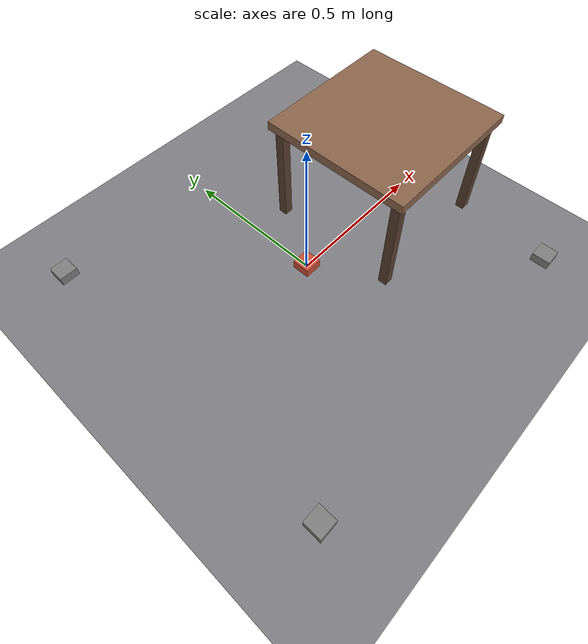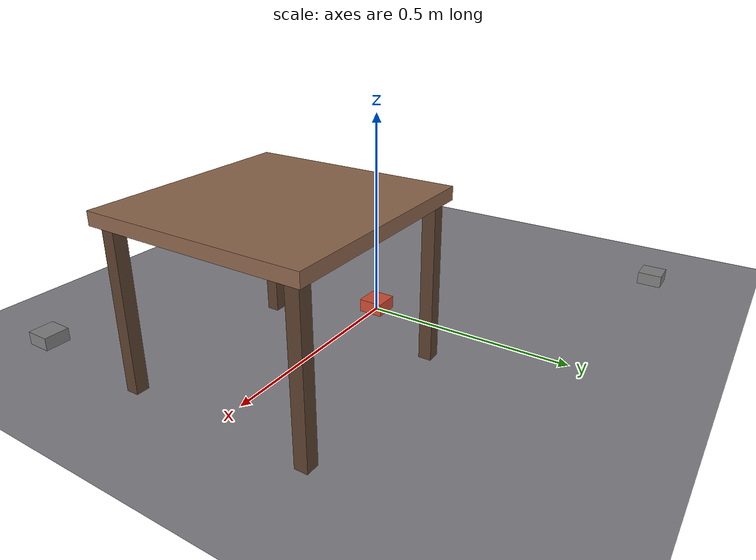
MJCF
<mujoco model="scaffolded_torque_reactive">
  <option timestep="0.002" integrator="implicitfast" />
  <asset>
    <texture name="ground_tex_0" type="2d" builtin="checker" rgb1="0.5 0.5 0.52" rgb2="0.4 0.4 0.42" width="64" height="64"/>
    <material name="ground_mat_0" texture="ground_tex_0" texrepeat="4 4" reflectance="0.1"/>
    <texture name="ground_tex_1" type="2d" builtin="checker" rgb1="0.45 0.42 0.38" rgb2="0.3 0.28 0.25" width="64" height="64"/>
    <material name="ground_mat_1" texture="ground_tex_1" texrepeat="6 6" reflectance="0.05"/>
    <texture name="ground_tex_2" type="2d" builtin="gradient" rgb1="0.55 0.6 0.65" rgb2="0.25 0.28 0.32" width="64" height="64"/>
    <material name="ground_mat_2" texture="ground_tex_2" reflectance="0.0"/>

    <texture name="table_tex_0" type="2d" builtin="checker" rgb1="0.55 0.4 0.3" rgb2="0.45 0.32 0.24" width="64" height="64"/>
    <material name="table_mat_0" texture="table_tex_0" texrepeat="3 3" reflectance="0.1"/>
    <texture name="table_tex_1" type="2d" builtin="checker" rgb1="0.6 0.55 0.5" rgb2="0.4 0.36 0.3" width="64" height="64"/>
    <material name="table_mat_1" texture="table_tex_1" texrepeat="2 2" reflectance="0.15"/>
    <texture name="table_tex_2" type="2d" builtin="gradient" rgb1="0.5 0.35 0.25" rgb2="0.25 0.18 0.12" width="64" height="64"/>
    <material name="table_mat_2" texture="table_tex_2" reflectance="0.05"/>
  </asset>
  <worldbody>
    <light pos="0.4 0 1.5" dir="0 0 -1" diffuse="0.8 0.8 0.8"/>
    <light pos="0.7 -0.4 1.0" dir="-0.4 0.4 -0.7" diffuse="0.4 0.4 0.4"/>

    <geom name="ground" type="plane" pos="0 0 0" size="0.8 0.8 0.01" contype="0" conaffinity="0" material="ground_mat_0" rgba="0.5 0.5 0.52 1"/>

    <body name="clutter_0" pos="-0.55 -0.55 0">
      <geom name="clutter_0_geom" type="box" size="0.03 0.03 0.03" contype="0" conaffinity="0" rgba="0.5 0.5 0.5 1"/>
    </body>
    <body name="clutter_1" pos="-0.55 0.55 0">
      <geom name="clutter_1_geom" type="box" size="0.03 0.03 0.03" contype="0" conaffinity="0" rgba="0.5 0.5 0.5 1"/>
    </body>
    <body name="clutter_2" pos="0.55 -0.55 0">
      <geom name="clutter_2_geom" type="box" size="0.03 0.03 0.03" contype="0" conaffinity="0" rgba="0.5 0.5 0.5 1"/>
    </body>

    <body name="table" pos="0.35 0 0">
      <geom name="table_top" type="box" pos="0 0 0.38" size="0.25 0.25 0.015" contype="0" conaffinity="0" material="table_mat_0" rgba="0.55 0.4 0.3 1"/>
      <geom name="table_leg_1" type="box" pos="0.22 0.22 0.19" size="0.015 0.015 0.19" contype="0" conaffinity="0" rgba="0.35 0.25 0.18 1"/>
      <geom name="table_leg_2" type="box" pos="-0.22 0.22 0.19" size="0.015 0.015 0.19" contype="0" conaffinity="0" rgba="0.35 0.25 0.18 1"/>
      <geom name="table_leg_3" type="box" pos="0.22 -0.22 0.19" size="0.015 0.015 0.19" contype="0" conaffinity="0" rgba="0.35 0.25 0.18 1"/>
      <geom name="table_leg_4" type="box" pos="-0.22 -0.22 0.19" size="0.015 0.015 0.19" contype="0" conaffinity="0" rgba="0.35 0.25 0.18 1"/>
    </body>

    <!-- torque-reactive 패턴: main_hinge_body(힌지 1개, 저항은 dof_damping으로 모델링) -->
<body name="main_hinge_body" pos="0 0 0">
  <joint name="main_hinge" type="hinge" axis="0 0 1" pos="0 0 0"
         damping="0.0" frictionloss="0.05" limited="false"/>
  <geom name="main_hinge_body_geom" type="box" size="0.03 0.03 0.03" mass="0.1" rgba="0.8 0.3 0.2 1"/>
</body>
  </worldbody>
  <actuator>
    <position name="main_hinge_drive" joint="main_hinge" kp="8.0" forcerange="-1.2 1.2"/>
  </actuator>
  <sensor>
    <jointactuatorfrc name="main_hinge_torque" joint="main_hinge"/>
  </sensor>
</mujoco>
